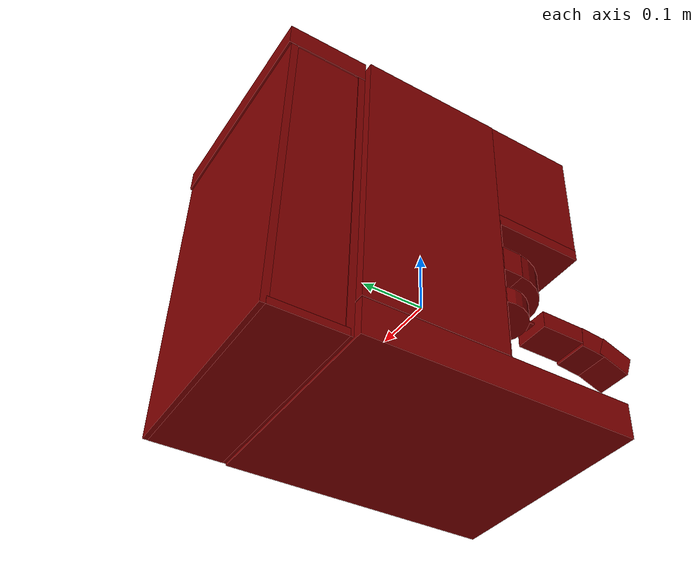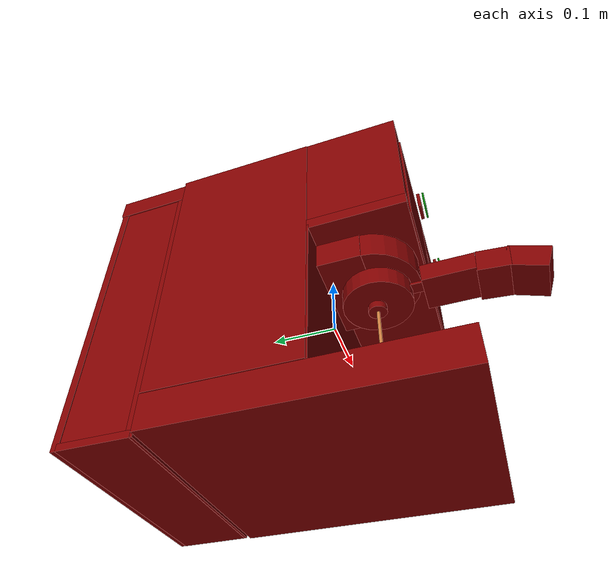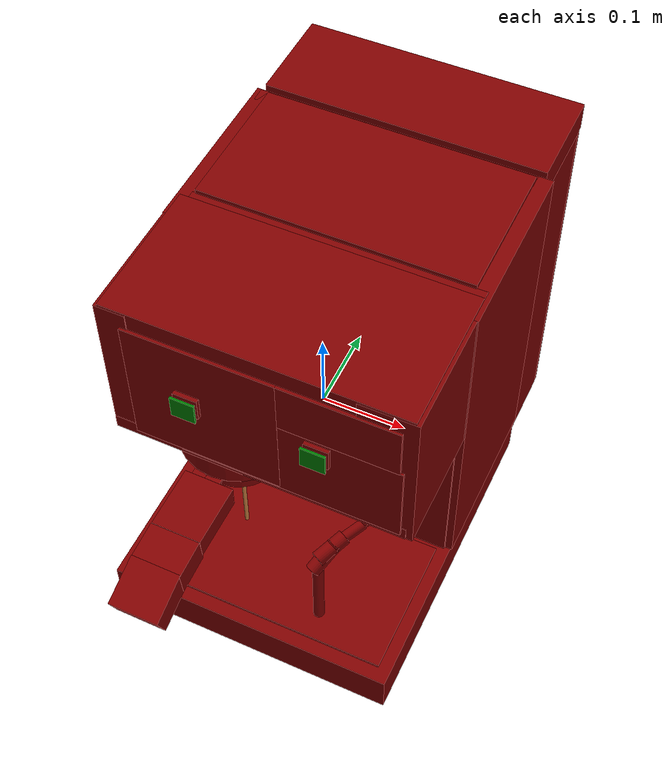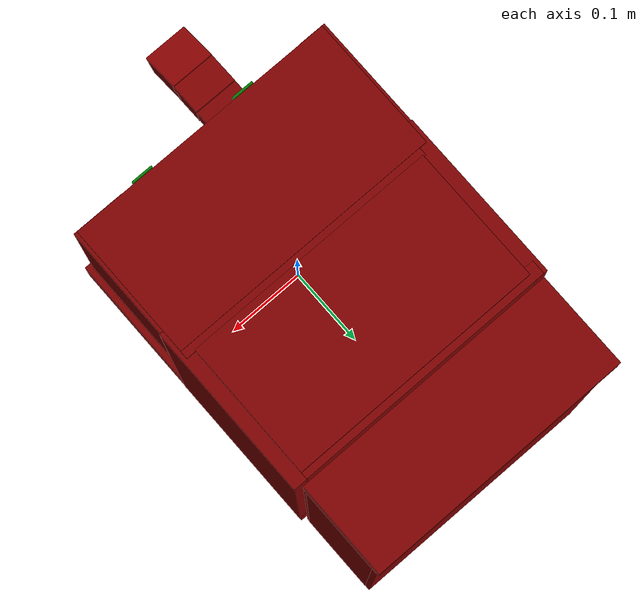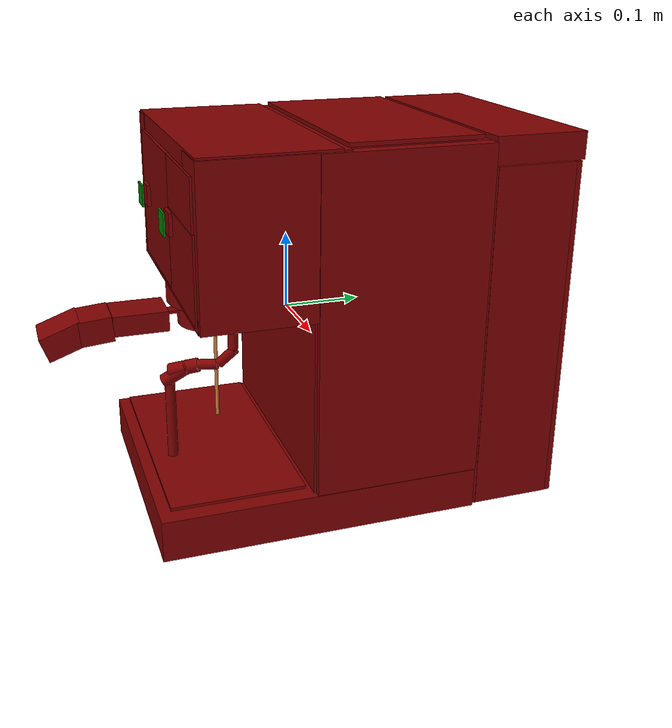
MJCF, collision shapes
<?xml version='1.0' encoding='UTF-8'?>
<mujoco model="model">
  <compiler angle="radian"/>
  <asset>
    <mesh file="visuals/Body001.obj" name="Body001_vis"/>
    <mesh file="visuals/Button001.obj" name="Button001_vis"/>
    <mesh file="visuals/Button002.obj" name="Button002_vis"/>
    <mesh file="visuals/Container001_Clear.obj" name="Container001_Clear_vis"/>
    <mesh file="visuals/Lever001.obj" name="Lever001_vis"/>
    <mesh file="visuals/Lever002.obj" name="Lever002_vis"/>
    <mesh file="visuals/Lid001.obj" name="Lid001_vis"/>
    <mesh file="visuals/Lid002_Clear.obj" name="Lid002_Clear_vis"/>
    <mesh file="visuals/Lid003.obj" name="Lid003_vis"/>
    <texture file="visuals/T_BC001.png" name="Body001_material" type="2d"/>
    <material name="Body001_material" rgba="1 1 1 1.0" texture="Body001_material" shininess="0.4472135901451111" specular="0.3103448502657381"/>
    <texture file="visuals/T_BC001.png" name="Button001_material" type="2d"/>
    <material name="Button001_material" rgba="1 1 1 1.0" texture="Button001_material" shininess="0.4472135901451111" specular="0.3103448502657381"/>
    <texture file="visuals/T_BC001.png" name="Button002_material" type="2d"/>
    <material name="Button002_material" rgba="1 1 1 1.0" texture="Button002_material" shininess="0.4472135901451111" specular="0.3103448502657381"/>
    <texture file="visuals/T_BC001.png" name="Container001_Clear_material" type="2d"/>
    <material name="Container001_Clear_material" rgba="1 1 1 0.24187728762626648" texture="Container001_Clear_material" shininess="0.4472135901451111" specular="0.3103448502657381"/>
    <texture file="visuals/T_BC001.png" name="Lid002_Clear_material" type="2d"/>
    <material name="Lid002_Clear_material" rgba="1 1 1 0.24187728762626648" texture="Lid002_Clear_material" shininess="0.4472135901451111" specular="0.3103448502657381"/>
    <texture file="visuals/T_BC001.png" name="Lever001_material" type="2d"/>
    <material name="Lever001_material" rgba="1 1 1 1.0" texture="Lever001_material" shininess="0.4472135901451111" specular="0.3103448502657381"/>
    <texture file="visuals/T_BC001.png" name="Lever002_material" type="2d"/>
    <material name="Lever002_material" rgba="1 1 1 1.0" texture="Lever002_material" shininess="0.4472135901451111" specular="0.3103448502657381"/>
    <texture file="visuals/T_BC001.png" name="Lid001_material" type="2d"/>
    <material name="Lid001_material" rgba="1 1 1 1.0" texture="Lid001_material" shininess="0.4472135901451111" specular="0.3103448502657381"/>
    <texture file="visuals/T_BC001.png" name="Lid003_material" type="2d"/>
    <material name="Lid003_material" rgba="1 1 1 1.0" texture="Lid003_material" shininess="0.4472135901451111" specular="0.3103448502657381"/>
  </asset>
  <default>
    <default class="visual">
      <geom conaffinity="0" contype="0" group="1" type="mesh"/>
    </default>
    <default class="collision">
      <geom group="0" rgba="0.5 0 0 0.5"/>
    </default>
    <default class="spawn">
      <geom group="0" rgba="1 1 1 0.5" contype="0" conaffinity="0"/>
      <site group="0" rgba="1 1 1 0.5"/>
    </default>
    <default class="region">
      <geom group="1" conaffinity="0" contype="0" rgba="0 1 0 0"/>
    </default>
  </default>
  <worldbody>
    <body>
      <body name="object">
        <geom class="collision" type="box" pos="-0.072729 -0.174975 0.148826" size="0.014021309092640877 0.0012715308694168925 0.014206734485924244" quat="1.0 0.0 0.0 0.0" name="start_button_1" rgba="0.0 0.5 0 0.5"/>
        <geom class="collision" type="box" pos="0.073179 -0.174975 0.148826" size="0.014007157646119595 0.0012715308694168925 0.014192395843565464" quat="1.0 0.0 0.0 0.0" name="start_button_2" rgba="0.0 0.5 0 0.5"/>
        <site type="cylinder" rgba="0.8 0.5 0.25 1" size="0.0024999999441206455 0.08904865384101868" pos="-0.066117 -0.083847 -0.121863" name="coffee_liquid"/>
        <site rgba="0 0 0 0" size="0.009999999776482582 0.009999999776482582" pos="-0.066837 -0.084344 -0.182758" name="receptacle_place_site"/>
        <geom mesh="Body001_vis" type="mesh" solimp="0.998 0.998 0.001" solref="0.001 1" density="100" friction="0.95 0.3 0.1" class="visual" material="Body001_material"/>
        <geom class="collision" type="box" pos="-0.001439 -0.003708 -0.218077" size="0.17642134428024292 0.2068256437778473 0.026909559965133667" quat="1.0 0.0 0.0 0.0"/>
        <geom class="collision" type="box" pos="0.168324 0.094398 0.025387" size="0.008983146399259567 0.10871749371290207 0.2143014520406723" quat="1.0 0.0 0.0 0.0"/>
        <geom class="collision" type="box" pos="0.143534 -0.085131 0.140661" size="0.032588012516498566 0.0706649050116539 0.09978067874908447" quat="1.0 0.0 0.0 0.0"/>
        <geom class="collision" type="box" pos="-0.157907 -0.085131 0.140661" size="0.01785935088992119 0.07066486775875092 0.0997806265950203" quat="1.0 0.0 0.0 0.0"/>
        <geom class="collision" type="box" pos="0.035231 -0.147496 0.102054" size="0.12784609198570251 0.01095810066908598 0.05440106615424156" quat="1.0 0.0 0.0 0.0"/>
        <geom class="collision" type="box" pos="-0.006153 0.193872 0.025387" size="0.16611431539058685 0.008983141742646694 0.2143014818429947" quat="1.0 0.0 0.0 0.0"/>
        <geom class="collision" type="box" pos="-0.168117 0.094398 0.025387" size="0.008983146399259567 0.10871749371290207 0.2143014520406723" quat="1.0 0.0 0.0 0.0"/>
        <geom class="collision" type="box" pos="0.000000 -0.070053 0.231194" size="0.17203819751739502 0.0848815068602562 0.011769674718379974" quat="1.0 0.0 0.0 0.0"/>
        <geom class="collision" type="box" pos="-0.061456 -0.071842 0.134941" size="0.08678238838911057 0.0866703912615776 0.08549359440803528" quat="1.0 0.0 0.0 0.0"/>
        <geom class="collision" type="box" pos="0.090772 -0.071842 0.187955" size="0.06870485097169876 0.0866703912615776 0.032479435205459595" quat="1.0 0.0 0.0 0.0"/>
        <geom class="collision" type="box" pos="-0.003656 -0.008038 -0.071066" size="0.1721239686012268 0.00898314081132412 0.11784803122282028" quat="1.0 0.0 0.0 0.0"/>
        <geom class="collision" type="box" pos="-0.003656 -0.082295 0.048678" size="0.1721239686012268 0.07390400767326355 0.008983148261904716" quat="1.0 0.0 0.0 0.0"/>
        <geom class="collision" type="box" pos="-0.066700 -0.033651 0.021831" size="0.07347027212381363 0.046624042093753815 0.024022262543439865" quat="1.0 0.0 0.0 0.0"/>
        <geom class="collision" type="cylinder" pos="-0.067002 -0.076898 0.022188" size="0.07261468470096588 0.02395540289580822" quat="1.0 0.0 0.0 0.0"/>
        <geom class="collision" type="box" pos="0.004053 0.103905 -0.045290" size="0.16142551600933075 0.08529532700777054 0.006276548374444246" quat="1.0 0.0 0.0 0.0"/>
        <geom class="collision" type="box" pos="0.004787 0.019543 0.084887" size="0.167435884475708 0.005303896497935057 0.15669618546962738" quat="1.0 0.0 0.0 0.0"/>
        <body name="Button001">
          <joint axis="0.0 1.0 0.0" pos="-0.069309 -0.170224 0.149156" limited="true" name="Button001_joint" range="0.0 0.003" type="slide" damping="1" frictionloss="1" armature=".01" stiffness="0.05"/>
          <geom mesh="Button001_vis" type="mesh" solimp="0.998 0.998 0.001" solref="0.001 1" density="100" friction="0.95 0.3 0.1" class="visual" material="Button001_material"/>
          <geom class="collision" type="box" pos="-0.072729 -0.167499 0.148826" size="0.014021309092640877 0.0023912638425827026 0.014206734485924244" quat="1.0 0.0 0.0 0.0"/>
        </body>
        <body name="Button002">
          <joint axis="0.0 1.0 0.0" pos="-0.023100 -0.170224 0.149156" limited="true" name="Button002_joint" range="0.0 0.003" type="slide" damping="1" frictionloss="1" armature=".01" stiffness="0.05"/>
          <geom mesh="Button002_vis" type="mesh" solimp="0.998 0.998 0.001" solref="0.001 1" density="100" friction="0.95 0.3 0.1" class="visual" material="Button002_material"/>
          <geom class="collision" type="box" pos="0.073829 -0.167680 0.148826" size="0.014007157646119595 0.0022063704673200846 0.014192395843565464" quat="1.0 0.0 0.0 0.0"/>
        </body>
        <body name="Container001_Clear">
          <joint axis="0.0 0.0 1.0" pos="-0.000002 0.266140 -0.000808" limited="true" name="Container001_Clear_joint" range="0.0 0.05" type="slide" damping="1" frictionloss="1" armature=".01" stiffness="0.05"/>
          <geom mesh="Container001_Clear_vis" type="mesh" solimp="0.998 0.998 0.001" solref="0.001 1" density="100" friction="0.95 0.3 0.1" class="visual" material="Container001_Clear_material"/>
          <geom class="collision" type="box" pos="-0.000147 0.211955 -0.018653" size="0.1684231460094452 0.005402825772762299 0.22750452160835266" quat="1.0 0.0 0.0 0.0"/>
          <geom class="collision" type="box" pos="-0.000147 0.318608 -0.018653" size="0.16842320561408997 0.005402825772762299 0.2275046408176422" quat="1.0 0.0 0.0 0.0"/>
          <geom class="collision" type="box" pos="-0.161742 0.263666 -0.018653" size="0.005402828566730022 0.052983205765485764 0.22750474512577057" quat="1.0 0.0 0.0 0.0"/>
          <geom class="collision" type="box" pos="0.163226 0.263666 -0.018653" size="0.005402828566730022 0.052983205765485764 0.22750474512577057" quat="1.0 0.0 0.0 0.0"/>
          <geom class="collision" type="box" pos="-0.000144 0.263666 -0.240879" size="0.16866706311702728 0.05298321321606636 0.0054028332233428955" quat="1.0 0.0 0.0 0.0"/>
          <body name="Lid002_Clear">
            <joint axis="0.0 0.0 1.0" pos="0.000003 0.266140 0.225884" limited="true" name="Lid002_Clear_joint" range="0.0 0.05" type="slide" damping="1" frictionloss="1" armature=".01" stiffness="0.05"/>
            <geom mesh="Lid002_Clear_vis" type="mesh" solimp="0.998 0.998 0.001" solref="0.001 1" density="100" friction="0.95 0.3 0.1" class="visual" material="Lid002_Clear_material"/>
            <geom class="collision" type="box" pos="-0.000147 0.266819 0.227609" size="0.16842325031757355 0.06035245582461357 0.017398059368133545" quat="1.0 0.0 0.0 0.0"/>
          </body>
        </body>
        <body name="Lever001">
          <joint axis="0.0 0.0 -1.0" pos="-0.066249 -0.083643 -0.011976" limited="true" name="Lever001_joint" range="0.0 1.5707963267948966" type="hinge" damping="1" frictionloss="1" armature=".01" stiffness="0.005"/>
          <geom mesh="Lever001_vis" type="mesh" solimp="0.998 0.998 0.001" solref="0.001 1" density="100" friction="0.95 0.3 0.1" class="visual" material="Lever001_material"/>
          <geom class="collision" type="box" pos="-0.067801 -0.189719 -0.019298" size="0.029788630083203316 0.037614401429891586 0.014069944620132446" quat="1.0 0.0 0.0 0.0"/>
          <geom class="collision" type="box" pos="-0.067801 -0.248977 -0.023551" size="0.02233966812491417 0.029788704589009285 0.017276881262660027" quat="0.7063846588134766 0.03194882348179817 -0.0319487638771534 0.7063846588134766"/>
          <geom class="collision" type="box" pos="-0.067801 -0.291020 -0.032771" size="0.028250370174646378 0.029788699001073837 0.017276886850595474" quat="0.696171224117279 0.12387723475694656 -0.12387711554765701 0.6961713433265686"/>
          <geom class="collision" type="cylinder" pos="-0.065463 -0.084969 -0.020219" size="0.050704918801784515 0.01385729480534792" quat="1.0 0.0 0.0 0.0"/>
          <geom class="collision" type="cylinder" pos="-0.066311 -0.083574 -0.039748" size="0.013463281095027924 0.005200744140893221" quat="1.0 0.0 0.0 0.0"/>
          <geom class="collision" type="box" pos="-0.066780 -0.142942 -0.014550" size="0.009434502571821213 0.009214445017278194 0.0019158277427777648" quat="0.7070986032485962 0.0034117817413061857 -0.003411733079701662 0.7070985436439514"/>
        </body>
        <body name="Lever002">
          <joint axis="0.0 0.0 1.0" pos="0.113422 -0.102769 0.044898" limited="true" name="Lever002_joint" range="0.0 1.0471975511965976" type="hinge" damping="1" frictionloss="1" armature=".01" stiffness="0.005"/>
          <geom mesh="Lever002_vis" type="mesh" solimp="0.998 0.998 0.001" solref="0.001 1" density="100" friction="0.95 0.3 0.1" class="visual" material="Lever002_material"/>
          <geom class="collision" type="cylinder" pos="0.098516 -0.132408 -0.027185" size="0.0062906574457883835 0.01386959757655859" quat="0.7152868509292603 -0.6563178896903992 0.16059985756874084 -0.1783793866634369"/>
          <geom class="collision" type="cylinder" pos="0.114229 -0.103214 0.010492" size="0.0062906574457883835 0.013869596645236015" quat="0.9707667231559753 -0.0006475317059084773 -0.0021047110203653574 -0.24001479148864746"/>
          <geom class="collision" type="cylinder" pos="0.110707 -0.110136 -0.014462" size="0.0062906574457883835 0.013869598507881165" quat="0.8966236114501953 -0.3720947504043579 0.08990528434515 -0.22255031764507294"/>
          <geom class="collision" type="cylinder" pos="0.076165 -0.175464 -0.105674" size="0.006472952663898468 0.05017020180821419" quat="1.0 0.0 0.0 0.0"/>
          <geom class="collision" type="cylinder" pos="0.079675 -0.167176 -0.042694" size="0.008795724250376225 0.019172366708517075" quat="0.7761518955230713 -0.26191267371177673 0.3789600431919098 0.43055692315101624"/>
          <geom class="collision" type="cylinder" pos="0.084034 -0.158122 -0.034267" size="0.008795724250376225 0.019172366708517075" quat="0.7029361724853516 -0.32940199971199036 0.5018993616104126 0.38140803575515747"/>
        </body>
        <body name="Lid001">
          <joint axis="0.0 0.0 1.0" pos="0.000684 0.110743 0.238658" limited="true" name="Lid001_joint" range="0.0 0.05" type="slide" damping="1" frictionloss="1" armature=".01" stiffness="0.05"/>
          <geom mesh="Lid001_vis" type="mesh" solimp="0.998 0.998 0.001" solref="0.001 1" density="100" friction="0.95 0.3 0.1" class="visual" material="Lid001_material"/>
          <geom class="collision" type="box" pos="0.000598 0.109115 0.244230" size="0.15957199037075043 0.08544464409351349 0.002633025636896491" quat="1.0 0.0 0.0 0.0"/>
        </body>
        <body name="Lid003">
          <joint axis="0.0 0.0 1.0" pos="0.000287 -0.110974 -0.183237" limited="true" name="Lid003_joint" range="0.0 0.02" type="slide" damping="1" frictionloss="1" armature=".01" stiffness="0.05"/>
          <geom mesh="Lid003_vis" type="mesh" solimp="0.998 0.998 0.001" solref="0.001 1" density="100" friction="0.95 0.3 0.1" class="visual" material="Lid003_material"/>
          <geom class="collision" type="box" pos="0.000552 -0.110927 -0.183092" size="0.1606253981590271 0.08553853631019592 0.0019397219875827432" quat="1.0 0.0 0.0 0.0"/>
        </body>
        <geom class="region" name="reg_main" type="box" pos="0.0 0.05828 0.00014050000000000173" size="0.174912 0.266125 0.2448995"/>
      </body>
    </body>
  </worldbody>
  <actuator>
    <motor name="Button001_joint_actuator" joint="Button001_joint" gear="0.5"/>
    <motor name="Button002_joint_actuator" joint="Button002_joint" gear="0.5"/>
    <motor name="Container001_Clear_joint_actuator" joint="Container001_Clear_joint" gear="100"/>
    <motor name="Lever001_joint_actuator" joint="Lever001_joint" gear="10"/>
    <motor name="Lever002_joint_actuator" joint="Lever002_joint" gear="10"/>
    <motor name="Lid001_joint_actuator" joint="Lid001_joint" gear="10"/>
    <motor name="Lid003_joint_actuator" joint="Lid003_joint" gear="10"/>
    <motor name="Lid002_Clear_joint_actuator" joint="Lid002_Clear_joint" gear="20"/>
  </actuator>
</mujoco>
